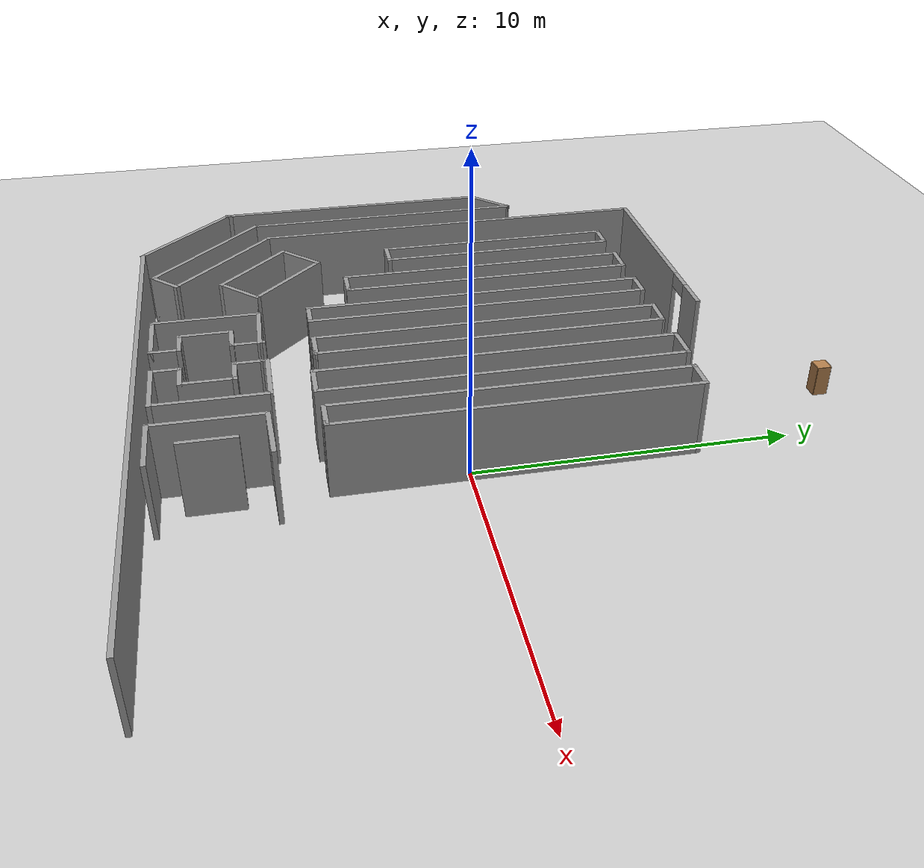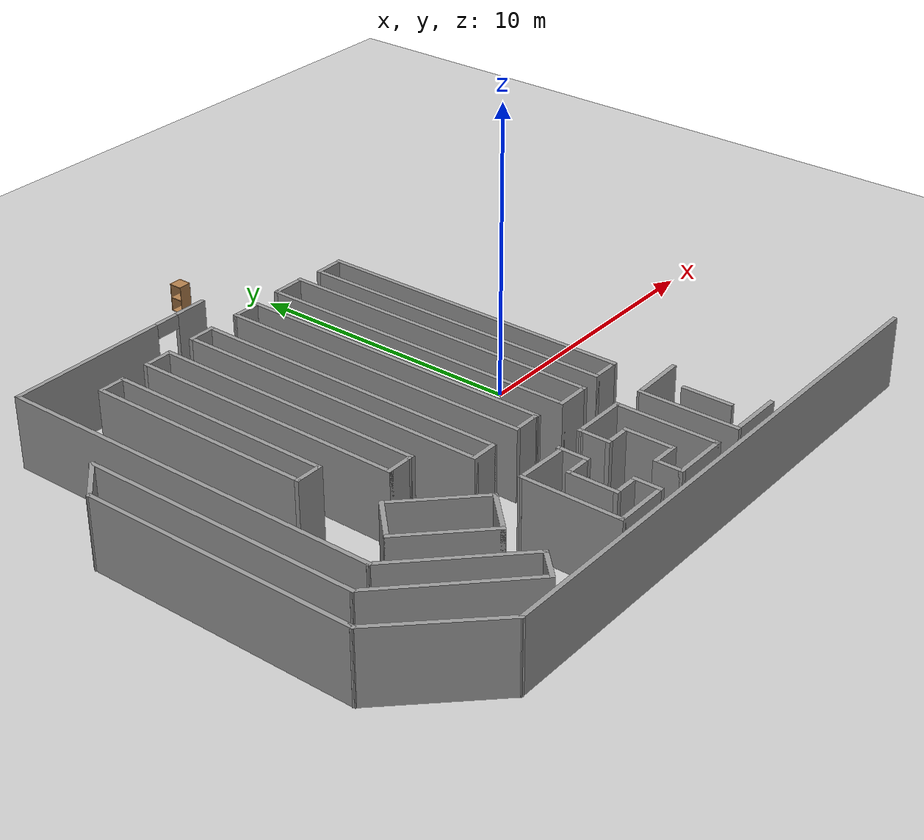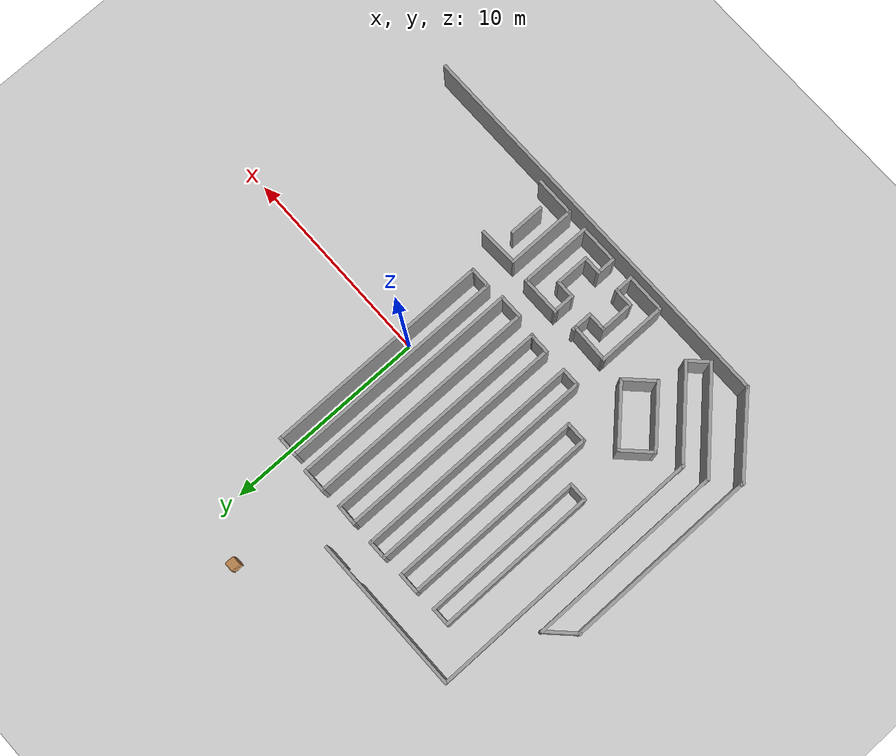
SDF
<sdf version="1.7">
 <world name="default">
  <model name="ground_plane">
   <static>1</static>
   <link name="link">
    <collision name="collision">
     <geometry><plane><normal>0 0 1</normal><size>100 100</size></plane></geometry>
     <surface><friction><ode><mu>100</mu><mu2>50</mu2></ode></friction></surface>
    </collision>
    <visual name="visual">
     <cast_shadows>0</cast_shadows>
     <geometry><plane><normal>0 0 1</normal><size>100 100</size></plane></geometry>
     <material>
      <script><uri>file://media/materials/scripts/gazebo.material</uri><name>Gazebo/Grey</name></script>
     </material>
    </visual>
   </link>
  </model>
  <model name="walls_market_g1">
   <pose>-0.66394 -0.44435 0 0 -0 0</pose>
   <link name="Wall_10">
    <pose>-7.72175 9.01697 0 0 -0 3.14159</pose>
    <visual name="Wall_10_Visual_0">
     <pose>-3.2754 0 1.25 0 -0 0</pose>
     <geometry><box><size>1.1992 0.15 2.5</size></box></geometry>
     <material>
      <script><uri>file://media/materials/scripts/gazebo.material</uri><name>Gazebo/Grey</name></script>
      <ambient>1 1 1 1</ambient>
     </material>
     <meta><layer>0</layer></meta>
    </visual>
    <collision name="Wall_10_Collision_0">
     <geometry><box><size>1.1992 0.15 2.5</size></box></geometry>
     <pose>-3.2754 0 1.25 0 -0 0</pose>
    </collision>
    <visual name="Wall_10_Visual_1">
     <pose>1.0496 0 1.25 0 -0 0</pose>
     <geometry><box><size>5.65081 0.15 2.5</size></box></geometry>
     <material>
      <script><uri>file://media/materials/scripts/gazebo.material</uri><name>Gazebo/Grey</name></script>
      <ambient>1 1 1 1</ambient>
     </material>
     <meta><layer>0</layer></meta>
    </visual>
    <collision name="Wall_10_Collision_1">
     <geometry><box><size>5.65081 0.15 2.5</size></box></geometry>
     <pose>1.0496 0 1.25 0 -0 0</pose>
    </collision>
    <visual name="Wall_10_Visual_2">
     <pose>-2.2258 0 2.25 0 -0 0</pose>
     <geometry><box><size>0.9 0.15 0.5</size></box></geometry>
     <material>
      <script><uri>file://media/materials/scripts/gazebo.material</uri><name>Gazebo/Grey</name></script>
      <ambient>1 1 1 1</ambient>
     </material>
     <meta><layer>0</layer></meta>
    </visual>
    <collision name="Wall_10_Collision_2">
     <geometry><box><size>0.9 0.15 0.5</size></box></geometry>
     <pose>-2.2258 0 2.25 0 -0 0</pose>
    </collision>
   </link>
   <link name="Wall_102">
    <collision name="Wall_102_Collision">
     <geometry><box><size>3.5 0.15 2.5</size></box></geometry>
     <pose>0 0 1.25 0 -0 0</pose>
    </collision>
    <visual name="Wall_102_Visual">
     <pose>0 0 1.25 0 -0 0</pose>
     <geometry><box><size>3.5 0.15 2.5</size></box></geometry>
     <material>
      <script><uri>file://media/materials/scripts/gazebo.material</uri><name>Gazebo/Grey</name></script>
      <ambient>1 1 1 1</ambient>
     </material>
     <meta><layer>0</layer></meta>
    </visual>
    <pose>-5.82694 -6.89416 0 0 -0 -1.5708</pose>
   </link>
   <link name="Wall_103">
    <collision name="Wall_103_Collision">
     <geometry><box><size>2 0.15 2.5</size></box></geometry>
     <pose>0 0 1.25 0 -0 0</pose>
    </collision>
    <visual name="Wall_103_Visual">
     <pose>0 0 1.25 0 -0 0</pose>
     <geometry><box><size>2 0.15 2.5</size></box></geometry>
     <material>
      <script><uri>file://media/materials/scripts/gazebo.material</uri><name>Gazebo/Grey</name></script>
      <ambient>1 1 1 1</ambient>
     </material>
     <meta><layer>0</layer></meta>
    </visual>
    <pose>-4.90194 -8.56916 0 0 -0 0</pose>
   </link>
   <link name="Wall_104">
    <collision name="Wall_104_Collision">
     <geometry><box><size>1 0.15 2.5</size></box></geometry>
     <pose>0 0 1.25 0 -0 0</pose>
    </collision>
    <visual name="Wall_104_Visual">
     <pose>0 0 1.25 0 -0 0</pose>
     <geometry><box><size>1 0.15 2.5</size></box></geometry>
     <material>
      <script><uri>file://media/materials/scripts/gazebo.material</uri><name>Gazebo/Grey</name></script>
      <ambient>1 1 1 1</ambient>
     </material>
     <meta><layer>0</layer></meta>
    </visual>
    <pose>-3.97694 -8.14416 0 0 -0 1.5708</pose>
   </link>
   <link name="Wall_105">
    <collision name="Wall_105_Collision">
     <geometry><box><size>1 0.15 2.5</size></box></geometry>
     <pose>0 0 1.25 0 -0 0</pose>
    </collision>
    <visual name="Wall_105_Visual">
     <pose>0 0 1.25 0 -0 0</pose>
     <geometry><box><size>1 0.15 2.5</size></box></geometry>
     <material>
      <script><uri>file://media/materials/scripts/gazebo.material</uri><name>Gazebo/Grey</name></script>
      <ambient>1 1 1 1</ambient>
     </material>
     <meta><layer>0</layer></meta>
    </visual>
    <pose>-4.40194 -7.71916 0 0 -0 3.14159</pose>
   </link>
   <link name="Wall_106">
    <collision name="Wall_106_Collision">
     <geometry><box><size>1.75 0.15 2.5</size></box></geometry>
     <pose>0 0 1.25 0 -0 0</pose>
    </collision>
    <visual name="Wall_106_Visual">
     <pose>0 0 1.25 0 -0 0</pose>
     <geometry><box><size>1.75 0.15 2.5</size></box></geometry>
     <material>
      <script><uri>file://media/materials/scripts/gazebo.material</uri><name>Gazebo/Grey</name></script>
      <ambient>1 1 1 1</ambient>
     </material>
     <meta><layer>0</layer></meta>
    </visual>
    <pose>-4.82694 -6.91916 0 0 -0 1.5708</pose>
   </link>
   <link name="Wall_107">
    <collision name="Wall_107_Collision">
     <geometry><box><size>1 0.15 2.5</size></box></geometry>
     <pose>0 0 1.25 0 -0 0</pose>
    </collision>
    <visual name="Wall_107_Visual">
     <pose>0 0 1.25 0 -0 0</pose>
     <geometry><box><size>1 0.15 2.5</size></box></geometry>
     <material>
      <script><uri>file://media/materials/scripts/gazebo.material</uri><name>Gazebo/Grey</name></script>
      <ambient>1 1 1 1</ambient>
     </material>
     <meta><layer>0</layer></meta>
    </visual>
    <pose>-4.40194 -6.11916 0 0 -0 0</pose>
   </link>
   <link name="Wall_108">
    <collision name="Wall_108_Collision">
     <geometry><box><size>1 0.15 2.5</size></box></geometry>
     <pose>0 0 1.25 0 -0 0</pose>
    </collision>
    <visual name="Wall_108_Visual">
     <pose>0 0 1.25 0 -0 0</pose>
     <geometry><box><size>1 0.15 2.5</size></box></geometry>
     <material>
      <script><uri>file://media/materials/scripts/gazebo.material</uri><name>Gazebo/Grey</name></script>
      <ambient>1 1 1 1</ambient>
     </material>
     <meta><layer>0</layer></meta>
    </visual>
    <pose>-3.97694 -5.69416 0 0 -0 1.5708</pose>
   </link>
   <link name="Wall_109">
    <collision name="Wall_109_Collision">
     <geometry><box><size>2.00068 0.15 2.5</size></box></geometry>
     <pose>0 0 1.25 0 -0 0</pose>
    </collision>
    <visual name="Wall_109_Visual">
     <pose>0 0 1.25 0 -0 0</pose>
     <geometry><box><size>2.00068 0.15 2.5</size></box></geometry>
     <material>
      <script><uri>file://media/materials/scripts/gazebo.material</uri><name>Gazebo/Grey</name></script>
      <ambient>1 1 1 1</ambient>
     </material>
     <meta><layer>0</layer></meta>
    </visual>
    <pose>-4.90194 -5.24416 0 0 -0 3.11457</pose>
   </link>
   <link name="Wall_11">
    <collision name="Wall_11_Collision">
     <geometry><box><size>13.75 0.15 2.5</size></box></geometry>
     <pose>0 0 1.25 0 -0 0</pose>
    </collision>
    <visual name="Wall_11_Visual">
     <pose>0 0 1.25 0 -0 0</pose>
     <geometry><box><size>13.75 0.15 2.5</size></box></geometry>
     <material>
      <script><uri>file://media/materials/scripts/gazebo.material</uri><name>Gazebo/Grey</name></script>
      <ambient>1 1 1 1</ambient>
     </material>
     <meta><layer>0</layer></meta>
    </visual>
    <pose>-11.5218 2.21697 0 0 -0 -1.5708</pose>
   </link>
   <link name="Wall_111">
    <collision name="Wall_111_Collision">
     <geometry><box><size>1 0.15 2.5</size></box></geometry>
     <pose>0 0 1.25 0 -0 0</pose>
    </collision>
    <visual name="Wall_111_Visual">
     <pose>0 0 1.25 0 -0 0</pose>
     <geometry><box><size>1 0.15 2.5</size></box></geometry>
     <material>
      <script><uri>file://media/materials/scripts/gazebo.material</uri><name>Gazebo/Grey</name></script>
      <ambient>1 1 1 1</ambient>
     </material>
     <meta><layer>0</layer></meta>
    </visual>
    <pose>-3.97694 -5.69416 0 0 -0 1.5708</pose>
   </link>
   <link name="Wall_112">
    <collision name="Wall_112_Collision">
     <geometry><box><size>0.25 0.15 2.5</size></box></geometry>
     <pose>0 0 1.25 0 -0 0</pose>
    </collision>
    <visual name="Wall_112_Visual">
     <pose>0 0 1.25 0 -0 0</pose>
     <geometry><box><size>0.25 0.15 2.5</size></box></geometry>
     <material>
      <script><uri>file://media/materials/scripts/gazebo.material</uri><name>Gazebo/Grey</name></script>
      <ambient>1 1 1 1</ambient>
     </material>
     <meta><layer>0</layer></meta>
    </visual>
    <pose>-3.97694 -5.21916 0 0 -0 1.5708</pose>
   </link>
   <link name="Wall_114">
    <collision name="Wall_114_Collision">
     <geometry><box><size>3.5 0.15 2.5</size></box></geometry>
     <pose>0 0 1.25 0 -0 0</pose>
    </collision>
    <visual name="Wall_114_Visual">
     <pose>0 0 1.25 0 -0 0</pose>
     <geometry><box><size>3.5 0.15 2.5</size></box></geometry>
     <material>
      <script><uri>file://media/materials/scripts/gazebo.material</uri><name>Gazebo/Grey</name></script>
      <ambient>1 1 1 1</ambient>
     </material>
     <meta><layer>0</layer></meta>
    </visual>
    <pose>-0.99694 -6.85966 0 0 -0 -1.5708</pose>
   </link>
   <link name="Wall_115">
    <collision name="Wall_115_Collision">
     <geometry><box><size>2 0.15 2.5</size></box></geometry>
     <pose>0 0 1.25 0 -0 0</pose>
    </collision>
    <visual name="Wall_115_Visual">
     <pose>0 0 1.25 0 -0 0</pose>
     <geometry><box><size>2 0.15 2.5</size></box></geometry>
     <material>
      <script><uri>file://media/materials/scripts/gazebo.material</uri><name>Gazebo/Grey</name></script>
      <ambient>1 1 1 1</ambient>
     </material>
     <meta><layer>0</layer></meta>
    </visual>
    <pose>-1.92194 -8.53466 0 0 -0 3.14159</pose>
   </link>
   <link name="Wall_116">
    <collision name="Wall_116_Collision">
     <geometry><box><size>1 0.15 2.5</size></box></geometry>
     <pose>0 0 1.25 0 -0 0</pose>
    </collision>
    <visual name="Wall_116_Visual">
     <pose>0 0 1.25 0 -0 0</pose>
     <geometry><box><size>1 0.15 2.5</size></box></geometry>
     <material>
      <script><uri>file://media/materials/scripts/gazebo.material</uri><name>Gazebo/Grey</name></script>
      <ambient>1 1 1 1</ambient>
     </material>
     <meta><layer>0</layer></meta>
    </visual>
    <pose>-2.84694 -8.10966 0 0 -0 1.5708</pose>
   </link>
   <link name="Wall_117">
    <collision name="Wall_117_Collision">
     <geometry><box><size>1 0.15 2.5</size></box></geometry>
     <pose>0 0 1.25 0 -0 0</pose>
    </collision>
    <visual name="Wall_117_Visual">
     <pose>0 0 1.25 0 -0 0</pose>
     <geometry><box><size>1 0.15 2.5</size></box></geometry>
     <material>
      <script><uri>file://media/materials/scripts/gazebo.material</uri><name>Gazebo/Grey</name></script>
      <ambient>1 1 1 1</ambient>
     </material>
     <meta><layer>0</layer></meta>
    </visual>
    <pose>-2.42194 -7.68466 0 0 -0 0</pose>
   </link>
   <link name="Wall_118">
    <collision name="Wall_118_Collision">
     <geometry><box><size>1.75 0.15 2.5</size></box></geometry>
     <pose>0 0 1.25 0 -0 0</pose>
    </collision>
    <visual name="Wall_118_Visual">
     <pose>0 0 1.25 0 -0 0</pose>
     <geometry><box><size>1.75 0.15 2.5</size></box></geometry>
     <material>
      <script><uri>file://media/materials/scripts/gazebo.material</uri><name>Gazebo/Grey</name></script>
      <ambient>1 1 1 1</ambient>
     </material>
     <meta><layer>0</layer></meta>
    </visual>
    <pose>-1.99694 -6.88466 0 0 -0 1.5708</pose>
   </link>
   <link name="Wall_119">
    <collision name="Wall_119_Collision">
     <geometry><box><size>1 0.15 2.5</size></box></geometry>
     <pose>0 0 1.25 0 -0 0</pose>
    </collision>
    <visual name="Wall_119_Visual">
     <pose>0 0 1.25 0 -0 0</pose>
     <geometry><box><size>1 0.15 2.5</size></box></geometry>
     <material>
      <script><uri>file://media/materials/scripts/gazebo.material</uri><name>Gazebo/Grey</name></script>
      <ambient>1 1 1 1</ambient>
     </material>
     <meta><layer>0</layer></meta>
    </visual>
    <pose>-2.42194 -6.08466 0 0 -0 3.14159</pose>
   </link>
   <link name="Wall_12">
    <collision name="Wall_12_Collision">
     <geometry><box><size>4.75 0.15 2.5</size></box></geometry>
     <pose>0 0 1.25 0 -0 0</pose>
    </collision>
    <visual name="Wall_12_Visual">
     <pose>0 0 1.25 0 -0 0</pose>
     <geometry><box><size>4.75 0.15 2.5</size></box></geometry>
     <material>
      <script><uri>file://media/materials/scripts/gazebo.material</uri><name>Gazebo/Grey</name></script>
      <ambient>1 1 1 1</ambient>
     </material>
     <meta><layer>0</layer></meta>
    </visual>
    <pose>-9.89541 -6.20938 0 0 -0 -0.785398</pose>
   </link>
   <link name="Wall_120">
    <collision name="Wall_120_Collision">
     <geometry><box><size>1 0.15 2.5</size></box></geometry>
     <pose>0 0 1.25 0 -0 0</pose>
    </collision>
    <visual name="Wall_120_Visual">
     <pose>0 0 1.25 0 -0 0</pose>
     <geometry><box><size>1 0.15 2.5</size></box></geometry>
     <material>
      <script><uri>file://media/materials/scripts/gazebo.material</uri><name>Gazebo/Grey</name></script>
      <ambient>1 1 1 1</ambient>
     </material>
     <meta><layer>0</layer></meta>
    </visual>
    <pose>-2.84694 -5.65966 0 0 -0 1.5708</pose>
   </link>
   <link name="Wall_121">
    <collision name="Wall_121_Collision">
     <geometry><box><size>0.292008 0.15 2.5</size></box></geometry>
     <pose>0 0 1.25 0 -0 0</pose>
    </collision>
    <visual name="Wall_121_Visual">
     <pose>0 0 1.25 0 -0 0</pose>
     <geometry><box><size>0.292008 0.15 2.5</size></box></geometry>
     <material>
      <script><uri>file://media/materials/scripts/gazebo.material</uri><name>Gazebo/Grey</name></script>
      <ambient>1 1 1 1</ambient>
     </material>
     <meta><layer>0</layer></meta>
    </visual>
    <pose>-2.84769 -5.16366 0 0 -0 1.58136</pose>
   </link>
   <link name="Wall_122">
    <collision name="Wall_122_Collision">
     <geometry><box><size>2 0.15 2.5</size></box></geometry>
     <pose>0 0 1.25 0 -0 0</pose>
    </collision>
    <visual name="Wall_122_Visual">
     <pose>0 0 1.25 0 -0 0</pose>
     <geometry><box><size>2 0.15 2.5</size></box></geometry>
     <material>
      <script><uri>file://media/materials/scripts/gazebo.material</uri><name>Gazebo/Grey</name></script>
      <ambient>1 1 1 1</ambient>
     </material>
     <meta><layer>0</layer></meta>
    </visual>
    <pose>-1.92344 -5.09266 0 0 -0 0</pose>
   </link>
   <link name="Wall_124">
    <collision name="Wall_124_Collision">
     <geometry><box><size>3.5 0.15 2.5</size></box></geometry>
     <pose>0 0 1.25 0 -0 0</pose>
    </collision>
    <visual name="Wall_124_Visual">
     <pose>0 0 1.25 0 -0 0</pose>
     <geometry><box><size>3.5 0.15 2.5</size></box></geometry>
     <material>
      <script><uri>file://media/materials/scripts/gazebo.material</uri><name>Gazebo/Grey</name></script>
      <ambient>1 1 1 1</ambient>
     </material>
     <meta><layer>0</layer></meta>
    </visual>
    <pose>0.02656 -6.90566 0 0 -0 -1.5708</pose>
   </link>
   <link name="Wall_125">
    <collision name="Wall_125_Collision">
     <geometry><box><size>2 0.15 2.5</size></box></geometry>
     <pose>0 0 1.25 0 -0 0</pose>
    </collision>
    <visual name="Wall_125_Visual">
     <pose>0 0 1.25 0 -0 0</pose>
     <geometry><box><size>2 0.15 2.5</size></box></geometry>
     <material>
      <script><uri>file://media/materials/scripts/gazebo.material</uri><name>Gazebo/Grey</name></script>
      <ambient>1 1 1 1</ambient>
     </material>
     <meta><layer>0</layer></meta>
    </visual>
    <pose>0.95156 -8.58066 0 0 -0 0</pose>
   </link>
   <link name="Wall_128">
    <collision name="Wall_128_Collision">
     <geometry><box><size>1.75 0.15 2.5</size></box></geometry>
     <pose>0 0 1.25 0 -0 0</pose>
    </collision>
    <visual name="Wall_128_Visual">
     <pose>0 0 1.25 0 -0 0</pose>
     <geometry><box><size>1.75 0.15 2.5</size></box></geometry>
     <material>
      <script><uri>file://media/materials/scripts/gazebo.material</uri><name>Gazebo/Grey</name></script>
      <ambient>1 1 1 1</ambient>
     </material>
     <meta><layer>0</layer></meta>
    </visual>
    <pose>1.02656 -6.93066 0 0 -0 1.5708</pose>
   </link>
   <link name="Wall_13">
    <collision name="Wall_13_Collision">
     <geometry><box><size>1.25 0.15 2.5</size></box></geometry>
     <pose>0 0 1.25 0 -0 0</pose>
    </collision>
    <visual name="Wall_13_Visual">
     <pose>0 0 1.25 0 -0 0</pose>
     <geometry><box><size>1.25 0.15 2.5</size></box></geometry>
     <material>
      <script><uri>file://media/materials/scripts/gazebo.material</uri><name>Gazebo/Grey</name></script>
      <ambient>1 1 1 1</ambient>
     </material>
     <meta><layer>0</layer></meta>
    </visual>
    <pose>-8.65797 -8.22463 0 0 -0 -2.35619</pose>
   </link>
   <link name="Wall_132">
    <collision name="Wall_132_Collision">
     <geometry><box><size>2.00239 0.15 2.5</size></box></geometry>
     <pose>0 0 1.25 0 -0 0</pose>
    </collision>
    <visual name="Wall_132_Visual">
     <pose>0 0 1.25 0 -0 0</pose>
     <geometry><box><size>2.00239 0.15 2.5</size></box></geometry>
     <material>
      <script><uri>file://media/materials/scripts/gazebo.material</uri><name>Gazebo/Grey</name></script>
      <ambient>1 1 1 1</ambient>
     </material>
     <meta><layer>0</layer></meta>
    </visual>
    <pose>0.95231 -5.20191 0 0 -0 -3.11055</pose>
   </link>
   <link name="Wall_14">
    <collision name="Wall_14_Collision">
     <geometry><box><size>5.25 0.15 2.5</size></box></geometry>
     <pose>0 0 1.25 0 -0 0</pose>
    </collision>
    <visual name="Wall_14_Visual">
     <pose>0 0 1.25 0 -0 0</pose>
     <geometry><box><size>5.25 0.15 2.5</size></box></geometry>
     <material>
      <script><uri>file://media/materials/scripts/gazebo.material</uri><name>Gazebo/Grey</name></script>
      <ambient>1 1 1 1</ambient>
     </material>
     <meta><layer>0</layer></meta>
    </visual>
    <pose>-10.85 -6.81042 0 0 -0 2.35619</pose>
   </link>
   <link name="Wall_15">
    <collision name="Wall_15_Collision">
     <geometry><box><size>9.75 0.15 2.5</size></box></geometry>
     <pose>0 0 1.25 0 -0 0</pose>
    </collision>
    <visual name="Wall_15_Visual">
     <pose>0 0 1.25 0 -0 0</pose>
     <geometry><box><size>9.75 0.15 2.5</size></box></geometry>
     <material>
      <script><uri>file://media/materials/scripts/gazebo.material</uri><name>Gazebo/Grey</name></script>
      <ambient>1 1 1 1</ambient>
     </material>
     <meta><layer>0</layer></meta>
    </visual>
    <pose>-12.6531 -0.207299 0 0 -0 1.5708</pose>
   </link>
   <link name="Wall_16">
    <collision name="Wall_16_Collision">
     <geometry><box><size>1.75 0.15 2.5</size></box></geometry>
     <pose>0 0 1.25 0 -0 0</pose>
    </collision>
    <visual name="Wall_16_Visual">
     <pose>0 0 1.25 0 -0 0</pose>
     <geometry><box><size>1.75 0.15 2.5</size></box></geometry>
     <material>
      <script><uri>file://media/materials/scripts/gazebo.material</uri><name>Gazebo/Grey</name></script>
      <ambient>1 1 1 1</ambient>
     </material>
     <meta><layer>0</layer></meta>
    </visual>
    <pose>-13.2188 4.02701 0 0 -0 -2.35619</pose>
   </link>
   <link name="Wall_17">
    <collision name="Wall_17_Collision">
     <geometry><box><size>9.5 0.15 2.5</size></box></geometry>
     <pose>0 0 1.25 0 -0 0</pose>
    </collision>
    <visual name="Wall_17_Visual">
     <pose>0 0 1.25 0 -0 0</pose>
     <geometry><box><size>9.5 0.15 2.5</size></box></geometry>
     <material>
      <script><uri>file://media/materials/scripts/gazebo.material</uri><name>Gazebo/Grey</name></script>
      <ambient>1 1 1 1</ambient>
     </material>
     <meta><layer>0</layer></meta>
    </visual>
    <pose>-13.7845 -1.21367 0 0 -0 -1.5708</pose>
   </link>
   <link name="Wall_18">
    <collision name="Wall_18_Collision">
     <geometry><box><size>0.25 0.15 2.5</size></box></geometry>
     <pose>0 0 1.25 0 -0 0</pose>
    </collision>
    <visual name="Wall_18_Visual">
     <pose>0 0 1.25 0 -0 0</pose>
     <geometry><box><size>0.25 0.15 2.5</size></box></geometry>
     <material>
      <script><uri>file://media/materials/scripts/gazebo.material</uri><name>Gazebo/Grey</name></script>
      <ambient>1 1 1 1</ambient>
     </material>
     <meta><layer>0</layer></meta>
    </visual>
    <pose>-13.7845 -5.93867 0 0 -0 -1.5708</pose>
   </link>
   <link name="Wall_19">
    <collision name="Wall_19_Collision">
     <geometry><box><size>4.34525 0.15 2.5</size></box></geometry>
     <pose>0 0 1.25 0 -0 0</pose>
    </collision>
    <visual name="Wall_19_Visual">
     <pose>0 0 1.25 0 -0 0</pose>
     <geometry><box><size>4.34525 0.15 2.5</size></box></geometry>
     <material>
      <script><uri>file://media/materials/scripts/gazebo.material</uri><name>Gazebo/Grey</name></script>
      <ambient>1 1 1 1</ambient>
     </material>
     <meta><layer>0</layer></meta>
    </visual>
    <pose>-12.3328 -7.50283 0 0 -0 -0.806464</pose>
   </link>
   <link name="Wall_2">
    <collision name="Wall_2_Collision">
     <geometry><box><size>19.75 0.15 2.5</size></box></geometry>
     <pose>0 0 1.25 0 -0 0</pose>
    </collision>
    <visual name="Wall_2_Visual">
     <pose>0 0 1.25 0 -0 0</pose>
     <geometry><box><size>19.75 0.15 2.5</size></box></geometry>
     <material>
      <script><uri>file://media/materials/scripts/gazebo.material</uri><name>Gazebo/Grey</name></script>
      <ambient>1 1 1 1</ambient>
     </material>
     <meta><layer>0</layer></meta>
    </visual>
    <pose>-1.08115 -9.01699 0 0 -0 0</pose>
   </link>
   <link name="Wall_21">
    <collision name="Wall_21_Collision">
     <geometry><box><size>3.25 0.15 2.5</size></box></geometry>
     <pose>0 0 1.25 0 -0 0</pose>
    </collision>
    <visual name="Wall_21_Visual">
     <pose>0 0 1.25 0 -0 0</pose>
     <geometry><box><size>3.25 0.15 2.5</size></box></geometry>
     <material>
      <script><uri>file://media/materials/scripts/gazebo.material</uri><name>Gazebo/Grey</name></script>
      <ambient>1 1 1 1</ambient>
     </material>
     <meta><layer>0</layer></meta>
    </visual>
    <pose>-9.20907 -5.23183 0 0 -0 -0.785398</pose>
   </link>
   <link name="Wall_22">
    <collision name="Wall_22_Collision">
     <geometry><box><size>1.75 0.15 2.5</size></box></geometry>
     <pose>0 0 1.25 0 -0 0</pose>
    </collision>
    <visual name="Wall_22_Visual">
     <pose>0 0 1.25 0 -0 0</pose>
     <geometry><box><size>1.75 0.15 2.5</size></box></geometry>
     <material>
      <script><uri>file://media/materials/scripts/gazebo.material</uri><name>Gazebo/Grey</name></script>
      <ambient>1 1 1 1</ambient>
     </material>
     <meta><layer>0</layer></meta>
    </visual>
    <pose>-7.54737 -5.76216 0 0 -0 0.785398</pose>
   </link>
   <link name="Wall_23">
    <collision name="Wall_23_Collision">
     <geometry><box><size>3.25 0.15 2.5</size></box></geometry>
     <pose>0 0 1.25 0 -0 0</pose>
    </collision>
    <visual name="Wall_23_Visual">
     <pose>0 0 1.25 0 -0 0</pose>
     <geometry><box><size>3.25 0.15 2.5</size></box></geometry>
     <material>
      <script><uri>file://media/materials/scripts/gazebo.material</uri><name>Gazebo/Grey</name></script>
      <ambient>1 1 1 1</ambient>
     </material>
     <meta><layer>0</layer></meta>
    </visual>
    <pose>-8.0777 -4.10046 0 0 -0 2.35619</pose>
   </link>
   <link name="Wall_24">
    <collision name="Wall_24_Collision">
     <geometry><box><size>1.75 0.15 2.5</size></box></geometry>
     <pose>0 0 1.25 0 -0 0</pose>
    </collision>
    <visual name="Wall_24_Visual">
     <pose>0 0 1.25 0 -0 0</pose>
     <geometry><box><size>1.75 0.15 2.5</size></box></geometry>
     <material>
      <script><uri>file://media/materials/scripts/gazebo.material</uri><name>Gazebo/Grey</name></script>
      <ambient>1 1 1 1</ambient>
     </material>
     <meta><layer>0</layer></meta>
    </visual>
    <pose>-9.7394 -3.57013 0 0 -0 -2.35619</pose>
   </link>
   <link name="Wall_26">
    <collision name="Wall_26_Collision">
     <geometry><box><size>8 0.15 2.5</size></box></geometry>
     <pose>0 0 1.25 0 -0 0</pose>
    </collision>
    <visual name="Wall_26_Visual">
     <pose>0 0 1.25 0 -0 0</pose>
     <geometry><box><size>8 0.15 2.5</size></box></geometry>
     <material>
      <script><uri>file://media/materials/scripts/gazebo.material</uri><name>Gazebo/Grey</name></script>
      <ambient>1 1 1 1</ambient>
     </material>
     <meta><layer>0</layer></meta>
    </visual>
    <pose>-9.75446 3.42943 0 0 -0 1.5708</pose>
   </link>
   <link name="Wall_27">
    <collision name="Wall_27_Collision">
     <geometry><box><size>1 0.15 2.5</size></box></geometry>
     <pose>0 0 1.25 0 -0 0</pose>
    </collision>
    <visual name="Wall_27_Visual">
     <pose>0 0 1.25 0 -0 0</pose>
     <geometry><box><size>1 0.15 2.5</size></box></geometry>
     <material>
      <script><uri>file://media/materials/scripts/gazebo.material</uri><name>Gazebo/Grey</name></script>
      <ambient>1 1 1 1</ambient>
     </material>
     <meta><layer>0</layer></meta>
    </visual>
    <pose>-9.32946 7.35442 0 0 -0 0</pose>
   </link>
   <link name="Wall_28">
    <collision name="Wall_28_Collision">
     <geometry><box><size>8 0.15 2.5</size></box></geometry>
     <pose>0 0 1.25 0 -0 0</pose>
    </collision>
    <visual name="Wall_28_Visual">
     <pose>0 0 1.25 0 -0 0</pose>
     <geometry><box><size>8 0.15 2.5</size></box></geometry>
     <material>
      <script><uri>file://media/materials/scripts/gazebo.material</uri><name>Gazebo/Grey</name></script>
      <ambient>1 1 1 1</ambient>
     </material>
     <meta><layer>0</layer></meta>
    </visual>
    <pose>-8.90446 3.42943 0 0 -0 -1.5708</pose>
   </link>
   <link name="Wall_29">
    <collision name="Wall_29_Collision">
     <geometry><box><size>1 0.15 2.5</size></box></geometry>
     <pose>0 0 1.25 0 -0 0</pose>
    </collision>
    <visual name="Wall_29_Visual">
     <pose>0 0 1.25 0 -0 0</pose>
     <geometry><box><size>1 0.15 2.5</size></box></geometry>
     <material>
      <script><uri>file://media/materials/scripts/gazebo.material</uri><name>Gazebo/Grey</name></script>
      <ambient>1 1 1 1</ambient>
     </material>
     <meta><layer>0</layer></meta>
    </visual>
    <pose>-9.32946 -0.495575 0 0 -0 3.14159</pose>
   </link>
   <link name="Wall_31">
    <collision name="Wall_31_Collision">
     <geometry><box><size>9.75 0.15 2.5</size></box></geometry>
     <pose>0 0 1.25 0 -0 0</pose>
    </collision>
    <visual name="Wall_31_Visual">
     <pose>0 0 1.25 0 -0 0</pose>
     <geometry><box><size>9.75 0.15 2.5</size></box></geometry>
     <material>
      <script><uri>file://media/materials/scripts/gazebo.material</uri><name>Gazebo/Grey</name></script>
      <ambient>1 1 1 1</ambient>
     </material>
     <meta><layer>0</layer></meta>
    </visual>
    <pose>-7.85787 2.62729 0 0 -0 -1.5708</pose>
   </link>
   <link name="Wall_32">
    <collision name="Wall_32_Collision">
     <geometry><box><size>1 0.15 2.5</size></box></geometry>
     <pose>0 0 1.25 0 -0 0</pose>
    </collision>
    <visual name="Wall_32_Visual">
     <pose>0 0 1.25 0 -0 0</pose>
     <geometry><box><size>1 0.15 2.5</size></box></geometry>
     <material>
      <script><uri>file://media/materials/scripts/gazebo.material</uri><name>Gazebo/Grey</name></script>
      <ambient>1 1 1 1</ambient>
     </material>
     <meta><layer>0</layer></meta>
    </visual>
    <pose>-7.43286 -2.17271 0 0 -0 0</pose>
   </link>
   <link name="Wall_33">
    <collision name="Wall_33_Collision">
     <geometry><box><size>0.25 0.15 2.5</size></box></geometry>
     <pose>0 0 1.25 0 -0 0</pose>
    </collision>
    <visual name="Wall_33_Visual">
     <pose>0 0 1.25 0 -0 0</pose>
     <geometry><box><size>0.25 0.15 2.5</size></box></geometry>
     <material>
      <script><uri>file://media/materials/scripts/gazebo.material</uri><name>Gazebo/Grey</name></script>
      <ambient>1 1 1 1</ambient>
     </material>
     <meta><layer>0</layer></meta>
    </visual>
    <pose>-6.95786 -2.17271 0 0 -0 0</pose>
   </link>
   <link name="Wall_34">
    <collision name="Wall_34_Collision">
     <geometry><box><size>9.75 0.15 2.5</size></box></geometry>
     <pose>0 0 1.25 0 -0 0</pose>
    </collision>
    <visual name="Wall_34_Visual">
     <pose>0 0 1.25 0 -0 0</pose>
     <geometry><box><size>9.75 0.15 2.5</size></box></geometry>
     <material>
      <script><uri>file://media/materials/scripts/gazebo.material</uri><name>Gazebo/Grey</name></script>
      <ambient>1 1 1 1</ambient>
     </material>
     <meta><layer>0</layer></meta>
    </visual>
    <pose>-6.90787 2.62729 0 0 -0 1.5708</pose>
   </link>
   <link name="Wall_35">
    <collision name="Wall_35_Collision">
     <geometry><box><size>1.1 0.15 2.5</size></box></geometry>
     <pose>0 0 1.25 0 -0 0</pose>
    </collision>
    <visual name="Wall_35_Visual">
     <pose>0 0 1.25 0 -0 0</pose>
     <geometry><box><size>1.1 0.15 2.5</size></box></geometry>
     <material>
      <script><uri>file://media/materials/scripts/gazebo.material</uri><name>Gazebo/Grey</name></script>
      <ambient>1 1 1 1</ambient>
     </material>
     <meta><layer>0</layer></meta>
    </visual>
    <pose>-7.38286 7.42729 0 0 -0 3.14159</pose>
   </link>
   <link name="Wall_37">
    <collision name="Wall_37_Collision">
     <geometry><box><size>11.25 0.15 2.5</size></box></geometry>
     <pose>0 0 1.25 0 -0 0</pose>
    </collision>
    <visual name="Wall_37_Visual">
     <pose>0 0 1.25 0 -0 0</pose>
     <geometry><box><size>11.25 0.15 2.5</size></box></geometry>
     <material>
      <script><uri>file://media/materials/scripts/gazebo.material</uri><name>Gazebo/Grey</name></script>
      <ambient>1 1 1 1</ambient>
     </material>
     <meta><layer>0</layer></meta>
    </visual>
    <pose>-5.8695 1.93847 0 0 -0 -1.5708</pose>
   </link>
   <link name="Wall_38">
    <collision name="Wall_38_Collision">
     <geometry><box><size>1 0.15 2.5</size></box></geometry>
     <pose>0 0 1.25 0 -0 0</pose>
    </collision>
    <visual name="Wall_38_Visual">
     <pose>0 0 1.25 0 -0 0</pose>
     <geometry><box><size>1 0.15 2.5</size></box></geometry>
     <material>
      <script><uri>file://media/materials/scripts/gazebo.material</uri><name>Gazebo/Grey</name></script>
      <ambient>1 1 1 1</ambient>
     </material>
     <meta><layer>0</layer></meta>
    </visual>
    <pose>-5.4445 -3.61153 0 0 -0 0</pose>
   </link>
   <link name="Wall_39">
    <collision name="Wall_39_Collision">
     <geometry><box><size>11.25 0.15 2.5</size></box></geometry>
     <pose>0 0 1.25 0 -0 0</pose>
    </collision>
    <visual name="Wall_39_Visual">
     <pose>0 0 1.25 0 -0 0</pose>
     <geometry><box><size>11.25 0.15 2.5</size></box></geometry>
     <material>
      <script><uri>file://media/materials/scripts/gazebo.material</uri><name>Gazebo/Grey</name></script>
      <ambient>1 1 1 1</ambient>
     </material>
     <meta><layer>0</layer></meta>
    </visual>
    <pose>-5.0195 1.93847 0 0 -0 1.5708</pose>
   </link>
   <link name="Wall_40">
    <collision name="Wall_40_Collision">
     <geometry><box><size>1 0.15 2.5</size></box></geometry>
     <pose>0 0 1.25 0 -0 0</pose>
    </collision>
    <visual name="Wall_40_Visual">
     <pose>0 0 1.25 0 -0 0</pose>
     <geometry><box><size>1 0.15 2.5</size></box></geometry>
     <material>
      <script><uri>file://media/materials/scripts/gazebo.material</uri><name>Gazebo/Grey</name></script>
      <ambient>1 1 1 1</ambient>
     </material>
     <meta><layer>0</layer></meta>
    </visual>
    <pose>-5.4445 7.48847 0 0 -0 3.14159</pose>
   </link>
   <link name="Wall_42">
    <collision name="Wall_42_Collision">
     <geometry><box><size>11.25 0.15 2.5</size></box></geometry>
     <pose>0 0 1.25 0 -0 0</pose>
    </collision>
    <visual name="Wall_42_Visual">
     <pose>0 0 1.25 0 -0 0</pose>
     <geometry><box><size>11.25 0.15 2.5</size></box></geometry>
     <material>
      <script><uri>file://media/materials/scripts/gazebo.material</uri><name>Gazebo/Grey</name></script>
      <ambient>1 1 1 1</ambient>
     </material>
     <meta><layer>0</layer></meta>
    </visual>
    <pose>-3.91173 1.93847 0 0 -0 -1.5708</pose>
   </link>
   <link name="Wall_43">
    <collision name="Wall_43_Collision">
     <geometry><box><size>1 0.15 2.5</size></box></geometry>
     <pose>0 0 1.25 0 -0 0</pose>
    </collision>
    <visual name="Wall_43_Visual">
     <pose>0 0 1.25 0 -0 0</pose>
     <geometry><box><size>1 0.15 2.5</size></box></geometry>
     <material>
      <script><uri>file://media/materials/scripts/gazebo.material</uri><name>Gazebo/Grey</name></script>
      <ambient>1 1 1 1</ambient>
     </material>
     <meta><layer>0</layer></meta>
    </visual>
    <pose>-3.48673 -3.61153 0 0 -0 0</pose>
   </link>
   <link name="Wall_44">
    <collision name="Wall_44_Collision">
     <geometry><box><size>0.25 0.15 2.5</size></box></geometry>
     <pose>0 0 1.25 0 -0 0</pose>
    </collision>
    <visual name="Wall_44_Visual">
     <pose>0 0 1.25 0 -0 0</pose>
     <geometry><box><size>0.25 0.15 2.5</size></box></geometry>
     <material>
      <script><uri>file://media/materials/scripts/gazebo.material</uri><name>Gazebo/Grey</name></script>
      <ambient>1 1 1 1</ambient>
     </material>
     <meta><layer>0</layer></meta>
    </visual>
    <pose>-3.01343 -3.62447 0 0 -0 -0.261799</pose>
   </link>
   <link name="Wall_45">
    <collision name="Wall_45_Collision">
     <geometry><box><size>11.25 0.15 2.5</size></box></geometry>
     <pose>0 0 1.25 0 -0 0</pose>
    </collision>
    <visual name="Wall_45_Visual">
     <pose>0 0 1.25 0 -0 0</pose>
     <geometry><box><size>11.25 0.15 2.5</size></box></geometry>
     <material>
      <script><uri>file://media/materials/scripts/gazebo.material</uri><name>Gazebo/Grey</name></script>
      <ambient>1 1 1 1</ambient>
     </material>
     <meta><layer>0</layer></meta>
    </visual>
    <pose>-2.96513 1.91259 0 0 -0 1.5708</pose>
   </link>
   <link name="Wall_46">
    <collision name="Wall_46_Collision">
     <geometry><box><size>1.09695 0.15 2.5</size></box></geometry>
     <pose>0 0 1.25 0 -0 0</pose>
    </collision>
    <visual name="Wall_46_Visual">
     <pose>0 0 1.25 0 -0 0</pose>
     <geometry><box><size>1.09695 0.15 2.5</size></box></geometry>
     <material>
      <script><uri>file://media/materials/scripts/gazebo.material</uri><name>Gazebo/Grey</name></script>
      <ambient>1 1 1 1</ambient>
     </material>
     <meta><layer>0</layer></meta>
    </visual>
    <pose>-3.43843 7.47553 0 0 -0 3.11426</pose>
   </link>
   <link name="Wall_48">
    <collision name="Wall_48_Collision">
     <geometry><box><size>11.5 0.15 2.5</size></box></geometry>
     <pose>0 0 1.25 0 -0 0</pose>
    </collision>
    <visual name="Wall_48_Visual">
     <pose>0 0 1.25 0 -0 0</pose>
     <geometry><box><size>11.5 0.15 2.5</size></box></geometry>
     <material>
      <script><uri>file://media/materials/scripts/gazebo.material</uri><name>Gazebo/Grey</name></script>
      <ambient>1 1 1 1</ambient>
     </material>
     <meta><layer>0</layer></meta>
    </visual>
    <pose>-1.95395 1.87465 0 0 -0 -1.5708</pose>
   </link>
   <link name="Wall_49">
    <collision name="Wall_49_Collision">
     <geometry><box><size>1.25 0.15 2.5</size></box></geometry>
     <pose>0 0 1.25 0 -0 0</pose>
    </collision>
    <visual name="Wall_49_Visual">
     <pose>0 0 1.25 0 -0 0</pose>
     <geometry><box><size>1.25 0.15 2.5</size></box></geometry>
     <material>
      <script><uri>file://media/materials/scripts/gazebo.material</uri><name>Gazebo/Grey</name></script>
      <ambient>1 1 1 1</ambient>
     </material>
     <meta><layer>0</layer></meta>
    </visual>
    <pose>-1.40395 -3.80035 0 0 -0 0</pose>
   </link>
   <link name="Wall_50">
    <collision name="Wall_50_Collision">
     <geometry><box><size>11.5 0.15 2.5</size></box></geometry>
     <pose>0 0 1.25 0 -0 0</pose>
    </collision>
    <visual name="Wall_50_Visual">
     <pose>0 0 1.25 0 -0 0</pose>
     <geometry><box><size>11.5 0.15 2.5</size></box></geometry>
     <material>
      <script><uri>file://media/materials/scripts/gazebo.material</uri><name>Gazebo/Grey</name></script>
      <ambient>1 1 1 1</ambient>
     </material>
     <meta><layer>0</layer></meta>
    </visual>
    <pose>-0.853951 1.87465 0 0 -0 1.5708</pose>
   </link>
   <link name="Wall_51">
    <collision name="Wall_51_Collision">
     <geometry><box><size>1.25 0.15 2.5</size></box></geometry>
     <pose>0 0 1.25 0 -0 0</pose>
    </collision>
    <visual name="Wall_51_Visual">
     <pose>0 0 1.25 0 -0 0</pose>
     <geometry><box><size>1.25 0.15 2.5</size></box></geometry>
     <material>
      <script><uri>file://media/materials/scripts/gazebo.material</uri><name>Gazebo/Grey</name></script>
      <ambient>1 1 1 1</ambient>
     </material>
     <meta><layer>0</layer></meta>
    </visual>
    <pose>-1.40395 7.54965 0 0 -0 3.14159</pose>
   </link>
   <link name="Wall_53">
    <collision name="Wall_53_Collision">
     <geometry><box><size>11.25 0.15 2.5</size></box></geometry>
     <pose>0 0 1.25 0 -0 0</pose>
    </collision>
    <visual name="Wall_53_Visual">
     <pose>0 0 1.25 0 -0 0</pose>
     <geometry><box><size>11.25 0.15 2.5</size></box></geometry>
     <material>
      <script><uri>file://media/materials/scripts/gazebo.material</uri><name>Gazebo/Grey</name></script>
      <ambient>1 1 1 1</ambient>
     </material>
     <meta><layer>0</layer></meta>
    </visual>
    <pose>-0.026767 1.87729 0 0 -0 -1.5708</pose>
   </link>
   <link name="Wall_54">
    <collision name="Wall_54_Collision">
     <geometry><box><size>1 0.15 2.5</size></box></geometry>
     <pose>0 0 1.25 0 -0 0</pose>
    </collision>
    <visual name="Wall_54_Visual">
     <pose>0 0 1.25 0 -0 0</pose>
     <geometry><box><size>1 0.15 2.5</size></box></geometry>
     <material>
      <script><uri>file://media/materials/scripts/gazebo.material</uri><name>Gazebo/Grey</name></script>
      <ambient>1 1 1 1</ambient>
     </material>
     <meta><layer>0</layer></meta>
    </visual>
    <pose>0.398233 -3.67271 0 0 -0 0</pose>
   </link>
   <link name="Wall_55">
    <collision name="Wall_55_Collision">
     <geometry><box><size>0.25 0.15 2.5</size></box></geometry>
     <pose>0 0 1.25 0 -0 0</pose>
    </collision>
    <visual name="Wall_55_Visual">
     <pose>0 0 1.25 0 -0 0</pose>
     <geometry><box><size>0.25 0.15 2.5</size></box></geometry>
     <material>
      <script><uri>file://media/materials/scripts/gazebo.material</uri><name>Gazebo/Grey</name></script>
      <ambient>1 1 1 1</ambient>
     </material>
     <meta><layer>0</layer></meta>
    </visual>
    <pose>0.873233 -3.67271 0 0 -0 0</pose>
   </link>
   <link name="Wall_56">
    <collision name="Wall_56_Collision">
     <geometry><box><size>11.25 0.15 2.5</size></box></geometry>
     <pose>0 0 1.25 0 -0 0</pose>
    </collision>
    <visual name="Wall_56_Visual">
     <pose>0 0 1.25 0 -0 0</pose>
     <geometry><box><size>11.25 0.15 2.5</size></box></geometry>
     <material>
      <script><uri>file://media/materials/scripts/gazebo.material</uri><name>Gazebo/Grey</name></script>
      <ambient>1 1 1 1</ambient>
     </material>
     <meta><layer>0</layer></meta>
    </visual>
    <pose>0.923234 1.87729 0 0 -0 1.5708</pose>
   </link>
   <link name="Wall_57">
    <collision name="Wall_57_Collision">
     <geometry><box><size>1.1 0.15 2.5</size></box></geometry>
     <pose>0 0 1.25 0 -0 0</pose>
    </collision>
    <visual name="Wall_57_Visual">
     <pose>0 0 1.25 0 -0 0</pose>
     <geometry><box><size>1.1 0.15 2.5</size></box></geometry>
     <material>
      <script><uri>file://media/materials/scripts/gazebo.material</uri><name>Gazebo/Grey</name></script>
      <ambient>1 1 1 1</ambient>
     </material>
     <meta><layer>0</layer></meta>
    </visual>
    <pose>0.448233 7.42729 0 0 -0 3.14159</pose>
   </link>
   <static>1</static>
  </model>
  <model name="cabinet">
   <static>1</static>
   <link name="cabinet_bottom_plate">
    <inertial>
     <pose>0 0 -1 0 -0 0</pose>
     <inertia><ixx>2.05</ixx><ixy>0</ixy><ixz>0</ixz><iyy>2.05</iyy><iyz>0</iyz><izz>2.05</izz></inertia>
     <mass>25</mass>
    </inertial>
    <collision name="cabinet_bottom_plate_geom">
     <pose>0 0 0.01 0 -0 0</pose>
     <geometry><box><size>0.45 0.45 0.02</size></box></geometry>
    </collision>
    <visual name="cabinet_bottom_plate_geom_visual">
     <pose>0 0 0.01 0 -0 0</pose>
     <geometry><box><size>0.45 0.45 0.02</size></box></geometry>
     <material>
      <script><uri>file://media/materials/scripts/gazebo.material</uri><name>Gazebo/Wood</name></script>
     </material>
    </visual>
    <collision name="cabinet_bottom_plate_geom_cabinet_back_plate">
     <pose>0.235 0 0.51 0 -0 0</pose>
     <geometry><box><size>0.02 0.45 1.02</size></box></geometry>
    </collision>
    <visual name="cabinet_bottom_plate_geom_cabinet_back_plate_visual">
     <pose>0.235 0 0.51 0 -0 0</pose>
     <geometry><box><size>0.02 0.45 1.02</size></box></geometry>
     <material>
      <script><uri>file://media/materials/scripts/gazebo.material</uri><name>Gazebo/Wood</name></script>
     </material>
    </visual>
    <collision name="cabinet_bottom_plate_geom_cabinet_left_plate">
     <pose>0 0.235 0.51 0 -0 0</pose>
     <geometry><box><size>0.45 0.02 1.02</size></box></geometry>
    </collision>
    <visual name="cabinet_bottom_plate_geom_cabinet_left_plate_visual">
     <pose>0 0.235 0.51 0 -0 0</pose>
     <geometry><box><size>0.45 0.02 1.02</size></box></geometry>
     <material>
      <script><uri>file://media/materials/scripts/gazebo.material</uri><name>Gazebo/Wood</name></script>
     </material>
    </visual>
    <collision name="cabinet_bottom_plate_geom_cabinet_middle_plate">
     <pose>0 0 0.51 0 -0 0</pose>
     <geometry><box><size>0.45 0.45 0.02</size></box></geometry>
    </collision>
    <visual name="cabinet_bottom_plate_geom_cabinet_middle_plate_visual">
     <pose>0 0 0.51 0 -0 0</pose>
     <geometry><box><size>0.45 0.45 0.02</size></box></geometry>
     <material>
      <script><uri>file://media/materials/scripts/gazebo.material</uri><name>Gazebo/Wood</name></script>
     </material>
    </visual>
    <collision name="cabinet_bottom_plate_geom_cabinet_right_plate">
     <pose>0 -0.235 0.51 0 -0 0</pose>
     <geometry><box><size>0.45 0.02 1.02</size></box></geometry>
    </collision>
    <visual name="cabinet_bottom_plate_geom_cabinet_right_plate_visual">
     <pose>0 -0.235 0.51 0 -0 0</pose>
     <geometry><box><size>0.45 0.02 1.02</size></box></geometry>
     <material>
      <script><uri>file://media/materials/scripts/gazebo.material</uri><name>Gazebo/Wood</name></script>
     </material>
    </visual>
    <collision name="cabinet_bottom_plate_geom_cabinet_top_plate">
     <pose>0 0 1.01 0 -0 0</pose>
     <geometry><box><size>0.45 0.45 0.02</size></box></geometry>
    </collision>
    <visual name="cabinet_bottom_plate_geom_cabinet_top_plate_visual">
     <pose>0 0 1.01 0 -0 0</pose>
     <geometry><box><size>0.45 0.45 0.02</size></box></geometry>
     <material>
      <script><uri>file://media/materials/scripts/gazebo.material</uri><name>Gazebo/Wood</name></script>
     </material>
    </visual>
   </link>
   <pose>-2.22665 12.107 0 0 -0 0</pose>
  </model>
 </world>
</sdf>
